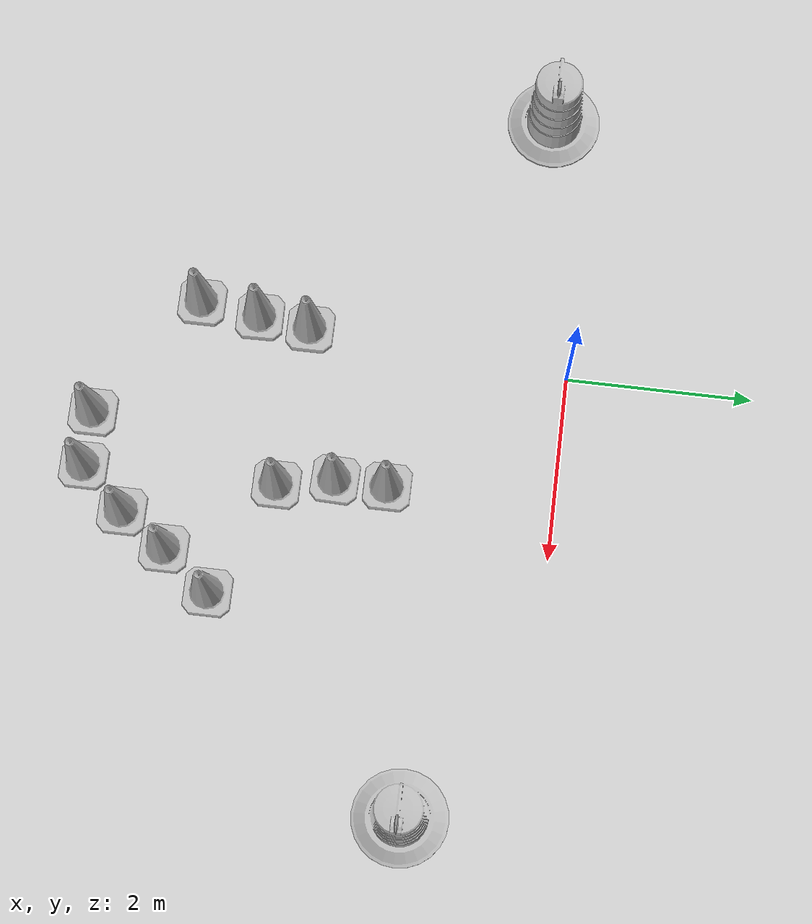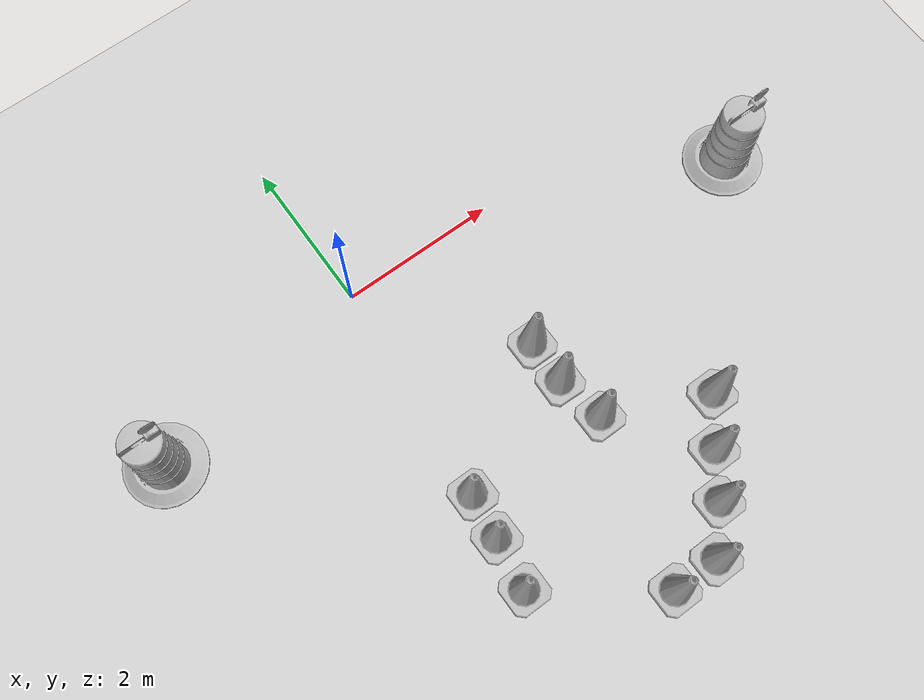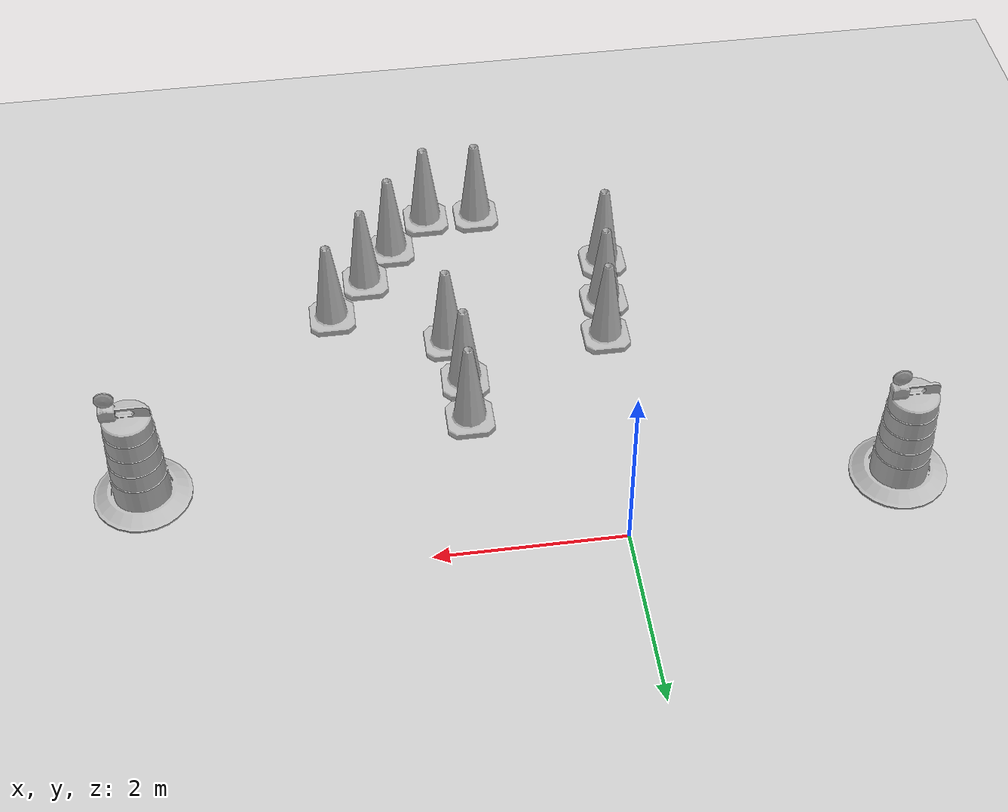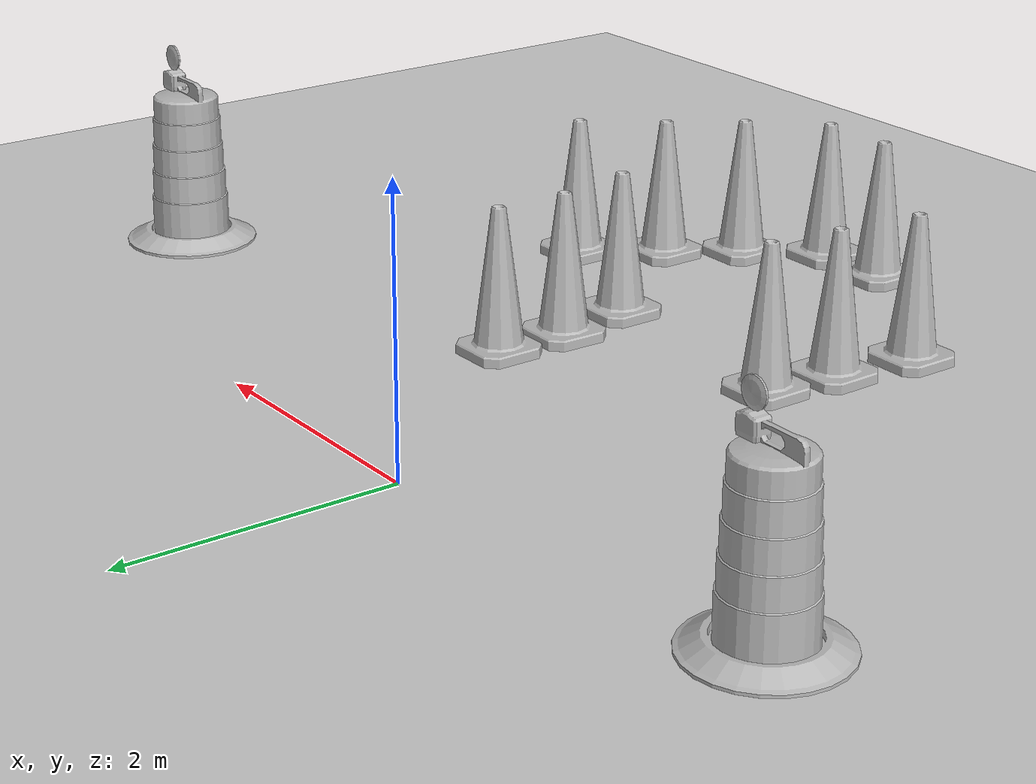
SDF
<sdf version="1.7">
 <world name="default">
  <light name="sun" type="directional">
   <pose>0 0 10 0 -0 0</pose>
   <diffuse>0.8 0.8 0.8 1</diffuse>
   <specular>0.2 0.2 0.2 1</specular>
   <attenuation>
    <range>1000</range>
    <constant>0.9</constant>
    <linear>0.01</linear>
    <quadratic>0.001</quadratic>
   </attenuation>
   <direction>-0.5 0.1 -0.9</direction>
   <spot><inner_angle>0</inner_angle><outer_angle>0</outer_angle><falloff>0</falloff></spot>
  </light>
  <model name="ground_plane">
   <static>1</static>
   <link name="link">
    <collision name="collision">
     <geometry><plane><normal>0 0 1</normal><size>100 100</size></plane></geometry>
     <surface>
      <contact><collide_bitmask>65535</collide_bitmask></contact>
      <friction><ode><mu>100</mu><mu2>50</mu2></ode></friction>
     </surface>
    </collision>
    <visual name="visual">
     <cast_shadows>0</cast_shadows>
     <geometry><plane><normal>0 0 1</normal><size>100 100</size></plane></geometry>
     <material>
      <script><uri>file://media/materials/scripts/gazebo.material</uri><name>Gazebo/Grey</name></script>
     </material>
    </visual>
   </link>
  </model>
  <gravity>0 0 -9.8</gravity>
  <magnetic_field>6e-06 2.3e-05 -4.2e-05</magnetic_field>
  <atmosphere type="adiabatic"/>
  <physics type="ode">
   <max_step_size>0.001</max_step_size>
   <real_time_factor>1</real_time_factor>
   <real_time_update_rate>1000</real_time_update_rate>
  </physics>
  <scene><ambient>0.4 0.4 0.4 1</ambient><background>0.7 0.7 0.7 1</background><shadows>1</shadows></scene>
  <audio><device>default</device></audio>
  <spherical_coordinates>
   <surface_model>EARTH_WGS84</surface_model>
   <latitude_deg>0</latitude_deg>
   <longitude_deg>0</longitude_deg>
   <elevation>0</elevation>
   <heading_deg>0</heading_deg>
  </spherical_coordinates>
  <model name="Construction Cone">
   <link name="link">
    <collision name="collision">
     <geometry>
      <mesh><scale>10 10 10</scale><uri>model://construction_cone/meshes/construction_cone.dae</uri></mesh>
     </geometry>
    </collision>
    <visual name="visual">
     <geometry>
      <mesh><scale>10 10 10</scale><uri>model://construction_cone/meshes/construction_cone.dae</uri></mesh>
     </geometry>
    </visual>
    <inertial>
     <inertia><ixx>1</ixx><ixy>0</ixy><ixz>0</ixz><iyy>1</iyy><iyz>0</iyz><izz>1</izz></inertia>
     <mass>1</mass>
    </inertial>
   </link>
   <pose>1.40363 -1.78357 -0 0 -0 0</pose>
  </model>
  <model name="Construction Cone_clone">
   <link name="link">
    <collision name="collision">
     <geometry>
      <mesh><scale>10 10 10</scale><uri>model://construction_cone/meshes/construction_cone.dae</uri></mesh>
     </geometry>
    </collision>
    <visual name="visual">
     <geometry>
      <mesh><scale>10 10 10</scale><uri>model://construction_cone/meshes/construction_cone.dae</uri></mesh>
     </geometry>
    </visual>
    <inertial>
     <inertia><ixx>1</ixx><ixy>0</ixy><ixz>0</ixz><iyy>1</iyy><iyz>0</iyz><izz>1</izz></inertia>
     <mass>1</mass>
    </inertial>
   </link>
   <pose>1.39025 -2.3468 -0 0 0 -0.031436</pose>
  </model>
  <model name="Construction Cone_clone_1">
   <link name="link">
    <collision name="collision">
     <geometry>
      <mesh><scale>10 10 10</scale><uri>model://construction_cone/meshes/construction_cone.dae</uri></mesh>
     </geometry>
    </collision>
    <visual name="visual">
     <geometry>
      <mesh><scale>10 10 10</scale><uri>model://construction_cone/meshes/construction_cone.dae</uri></mesh>
     </geometry>
    </visual>
    <inertial>
     <inertia><ixx>1</ixx><ixy>0</ixy><ixz>0</ixz><iyy>1</iyy><iyz>0</iyz><izz>1</izz></inertia>
     <mass>1</mass>
    </inertial>
   </link>
   <pose>-0.248827 -2.82102 -0 0 -0 0</pose>
  </model>
  <model name="Construction Cone_clone_2">
   <link name="link">
    <collision name="collision">
     <geometry>
      <mesh><scale>10 10 10</scale><uri>model://construction_cone/meshes/construction_cone.dae</uri></mesh>
     </geometry>
    </collision>
    <visual name="visual">
     <geometry>
      <mesh><scale>10 10 10</scale><uri>model://construction_cone/meshes/construction_cone.dae</uri></mesh>
     </geometry>
    </visual>
    <inertial>
     <inertia><ixx>1</ixx><ixy>0</ixy><ixz>0</ixz><iyy>1</iyy><iyz>0</iyz><izz>1</izz></inertia>
     <mass>1</mass>
    </inertial>
   </link>
   <pose>-0.321547 -3.38049 -0 0 -0 0.018335</pose>
  </model>
  <model name="Construction Cone_clone_3">
   <link name="link">
    <collision name="collision">
     <geometry>
      <mesh><scale>10 10 10</scale><uri>model://construction_cone/meshes/construction_cone.dae</uri></mesh>
     </geometry>
    </collision>
    <visual name="visual">
     <geometry>
      <mesh><scale>10 10 10</scale><uri>model://construction_cone/meshes/construction_cone.dae</uri></mesh>
     </geometry>
    </visual>
    <inertial>
     <inertia><ixx>1</ixx><ixy>0</ixy><ixz>0</ixz><iyy>1</iyy><iyz>0</iyz><izz>1</izz></inertia>
     <mass>1</mass>
    </inertial>
   </link>
   <pose>-0.415797 -4.02719 -0 0 -0 0</pose>
  </model>
  <model name="Construction Cone_clone_0">
   <link name="link">
    <collision name="collision">
     <geometry>
      <mesh><scale>10 10 10</scale><uri>model://construction_cone/meshes/construction_cone.dae</uri></mesh>
     </geometry>
    </collision>
    <visual name="visual">
     <geometry>
      <mesh><scale>10 10 10</scale><uri>model://construction_cone/meshes/construction_cone.dae</uri></mesh>
     </geometry>
    </visual>
    <inertial>
     <inertia><ixx>1</ixx><ixy>0</ixy><ixz>0</ixz><iyy>1</iyy><iyz>0</iyz><izz>1</izz></inertia>
     <mass>1</mass>
    </inertial>
   </link>
   <pose>1.51069 -2.96177 -0 0 -0 0</pose>
  </model>
  <model name="Construction Cone_clone_4">
   <link name="link">
    <collision name="collision">
     <geometry>
      <mesh><scale>10 10 10</scale><uri>model://construction_cone/meshes/construction_cone.dae</uri></mesh>
     </geometry>
    </collision>
    <visual name="visual">
     <geometry>
      <mesh><scale>10 10 10</scale><uri>model://construction_cone/meshes/construction_cone.dae</uri></mesh>
     </geometry>
    </visual>
    <inertial>
     <inertia><ixx>1</ixx><ixy>0</ixy><ixz>0</ixz><iyy>1</iyy><iyz>0</iyz><izz>1</izz></inertia>
     <mass>1</mass>
    </inertial>
   </link>
   <pose>0.943033 -5.02436 -8e-06 0 -0 0</pose>
  </model>
  <model name="Construction Cone_clone_5">
   <link name="link">
    <collision name="collision">
     <geometry>
      <mesh><scale>10 10 10</scale><uri>model://construction_cone/meshes/construction_cone.dae</uri></mesh>
     </geometry>
    </collision>
    <visual name="visual">
     <geometry>
      <mesh><scale>10 10 10</scale><uri>model://construction_cone/meshes/construction_cone.dae</uri></mesh>
     </geometry>
    </visual>
    <inertial>
     <inertia><ixx>1</ixx><ixy>0</ixy><ixz>0</ixz><iyy>1</iyy><iyz>0</iyz><izz>1</izz></inertia>
     <mass>1</mass>
    </inertial>
   </link>
   <pose>1.53747 -5.03489 -0 0 -1e-06 0</pose>
  </model>
  <model name="Construction Cone_clone_6">
   <link name="link">
    <collision name="collision">
     <geometry>
      <mesh><scale>10 10 10</scale><uri>model://construction_cone/meshes/construction_cone.dae</uri></mesh>
     </geometry>
    </collision>
    <visual name="visual">
     <geometry>
      <mesh><scale>10 10 10</scale><uri>model://construction_cone/meshes/construction_cone.dae</uri></mesh>
     </geometry>
    </visual>
    <inertial>
     <inertia><ixx>1</ixx><ixy>0</ixy><ixz>0</ixz><iyy>1</iyy><iyz>0</iyz><izz>1</izz></inertia>
     <mass>1</mass>
    </inertial>
   </link>
   <pose>1.98686 -4.55642 -0 0 -1e-06 0</pose>
  </model>
  <model name="Construction Cone_clone_7">
   <link name="link">
    <collision name="collision">
     <geometry>
      <mesh><scale>10 10 10</scale><uri>model://construction_cone/meshes/construction_cone.dae</uri></mesh>
     </geometry>
    </collision>
    <visual name="visual">
     <geometry>
      <mesh><scale>10 10 10</scale><uri>model://construction_cone/meshes/construction_cone.dae</uri></mesh>
     </geometry>
    </visual>
    <inertial>
     <inertia><ixx>1</ixx><ixy>0</ixy><ixz>0</ixz><iyy>1</iyy><iyz>0</iyz><izz>1</izz></inertia>
     <mass>1</mass>
    </inertial>
   </link>
   <pose>2.33553 -4.05478 -0 -0 -0 -0</pose>
  </model>
  <model name="Construction Cone_clone_8">
   <link name="link">
    <collision name="collision">
     <geometry>
      <mesh><scale>10 10 10</scale><uri>model://construction_cone/meshes/construction_cone.dae</uri></mesh>
     </geometry>
    </collision>
    <visual name="visual">
     <geometry>
      <mesh><scale>10 10 10</scale><uri>model://construction_cone/meshes/construction_cone.dae</uri></mesh>
     </geometry>
    </visual>
    <inertial>
     <inertia><ixx>1</ixx><ixy>0</ixy><ixz>0</ixz><iyy>1</iyy><iyz>0</iyz><izz>1</izz></inertia>
     <mass>1</mass>
    </inertial>
   </link>
   <pose>2.75195 -3.53176 -0 0 -1e-06 0</pose>
  </model>
  <model name="Construction Barrel">
   <link name="link">
    <inertial>
     <pose>0 0 0.4 0 -0 0</pose>
     <mass>500</mass>
     <inertia><ixx>51.2096</ixx><iyy>51.2096</iyy><izz>25</izz><ixy>0</ixy><ixz>0</ixz><iyz>0</iyz></inertia>
    </inertial>
    <collision name="collision">
     <geometry><mesh><uri>model://construction_barrel/meshes/construction_barrel.dae</uri></mesh></geometry>
    </collision>
    <visual name="visual">
     <geometry><mesh><uri>model://construction_barrel/meshes/construction_barrel.dae</uri></mesh></geometry>
    </visual>
   </link>
   <pose>4.86194 -1.24152 -1e-06 3e-06 1e-05 -7e-06</pose>
  </model>
  <model name="Construction Barrel_0">
   <link name="link">
    <inertial>
     <pose>0 0 0.4 0 -0 0</pose>
     <mass>500</mass>
     <inertia><ixx>51.2096</ixx><iyy>51.2096</iyy><izz>25</izz><ixy>0</ixy><ixz>0</ixz><iyz>0</iyz></inertia>
    </inertial>
    <collision name="collision">
     <geometry><mesh><uri>model://construction_barrel/meshes/construction_barrel.dae</uri></mesh></geometry>
    </collision>
    <visual name="visual">
     <geometry><mesh><uri>model://construction_barrel/meshes/construction_barrel.dae</uri></mesh></geometry>
    </visual>
   </link>
   <pose>-2.9202 -0.437522 -3e-06 -0 -1.2e-05 -4e-06</pose>
  </model>
 </world>
</sdf>
